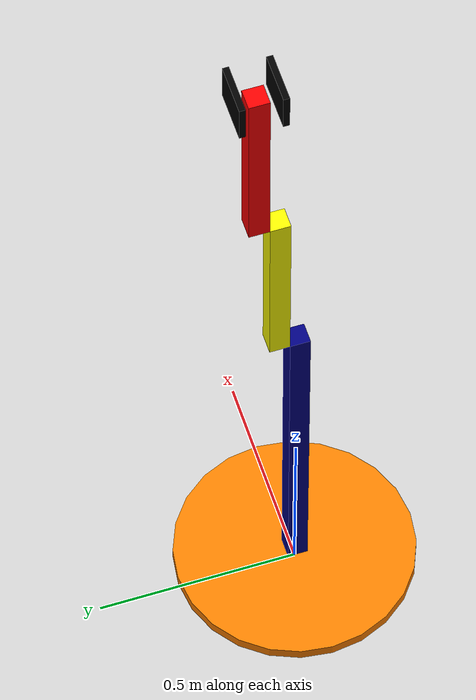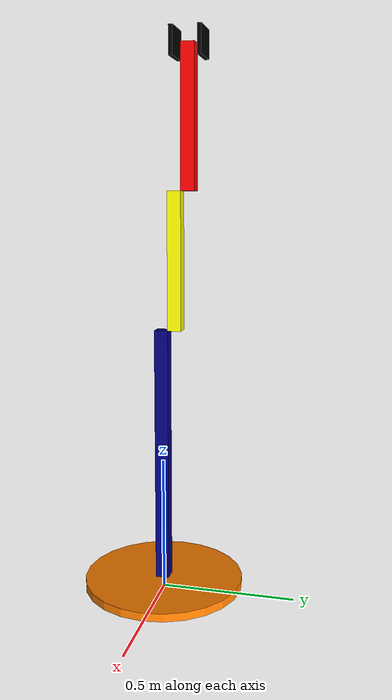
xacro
<?xml version="1.0"?>
<robot name="robotic_arm" xmlns:xacro="http://www.ros.org/wiki/xacro" >

    <xacro:include filename="colors.xacro" />
    <xacro:include filename="properties.xacro" />
    <xacro:include filename="gripper.xacro" />
    <xacro:include filename="gazebo.xacro" />
    <xacro:include filename="my_robotic_arm.xacro" />

</robot>

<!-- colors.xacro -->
<robot name="robotic_arm" xmlns:xacro="http://www.ros.org/wiki/xacro" >

    <material name="orange">
        <color rgba="1 0.5 0 1"/>
    </material>

    <material name="navy_blue">
        <color rgba="0 0 0.5 1"/>
    </material>

    <material name="yellow">
        <color rgba="1 1 0 1"/>
    </material>

    <material name="red">
        <color rgba="1 0 0 1"/>
    </material>

    <material name="black">
        <color rgba="0 0 0 1"/>
    </material>

</robot>

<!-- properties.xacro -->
<robot name="robotic_arm" xmlns:xacro="http://www.ros.org/wiki/xacro" >

    <xacro:macro name = "box_inertial" params = "m l w h xyz rpy">
        <inertial>
            <origin xyz = "${xyz}" rpy = "${rpy}"/>
            <mass value = "${m}"/>
            <inertia ixx="${(m/12) * (h*h + l*l)}" ixy="0.0" ixz="0.0" iyy="${(m/12) * (w*w + l*l)}" iyz="0.0" izz="${(m/12) * (w*w + h*h)}"/>
        </inertial>
    </xacro:macro>

    <xacro:macro name = "cylinder_inertial" params = "m r l xyz rpy">
        <inertial>
            <origin xyz = "${xyz}" rpy = "${rpy}"/>
            <mass value = "${m}"/>
            <inertia ixx="${(m/12) * (3*r*r + l*l)}" ixy="0.0" ixz="0.0" iyy="${(m/12) * (3*r*r + l*l)}" iyz="0.0" izz="${(m/12) * r * r}"/>
        </inertial>
    </xacro:macro>

    <xacro:macro name="default_inertial" params="z_value i_value mass">
        <inertial>
            <origin xyz="0 0 ${z_value}" rpy="0 0 0"/>
            <mass value="${mass}" />
            <inertia ixx="${i_value}" ixy="0.0" ixz="0.0"
               iyy="${i_value}" iyz="0.0"
               izz="${i_value}" />
        </inertial>
    </xacro:macro>

</robot>

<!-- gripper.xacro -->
<robot name="robotic_arm" xmlns:xacro="http://www.ros.org/wiki/xacro" >

    <xacro:property name="base_width" value="0.05" />
    <xacro:property name="base_length" value="0.05" />
    <xacro:property name="base_heigth" value="1.0" />
    <xacro:property name="axle_offset" value="0.5" />

    <link name="left_gripper_link">
        <visual>
            <origin xyz="0 0 0" rpy="0 0 0"/>
            <geometry>
                <box size="0.1 0.015 0.12" />
            </geometry>
            <material name = "black" />
        </visual>
        <collision>
            <origin xyz = "0 0 0" rpy = "0 0 0" />
            <geometry>
                <box size="0.1 0.015 0.12" />
            </geometry>
        </collision>
        <xacro:default_inertial z_value="0" i_value="1e-6" mass="1"/>

    </link>

    <joint name="left_to_top_joint" type="revolute">
        <parent link="top_link"/>
        <child link="left_gripper_link"/>
        <origin xyz="0 -${base_width} ${base_heigth - axle_offset}" rpy="0 -1.57 0"/>
        <axis xyz="0 0 -1"/>
        <limit effort="30.0" lower="-0.548" upper="0.0" velocity="0.1"/>
    </joint>

    <link name="right_gripper_link">
        <visual>
            <origin xyz="0 0 0" rpy="0 0 0"/>
            <geometry>
                <box size="0.1 0.015 0.12" />
            </geometry>
            <material name = "black" />

        </visual>
        <collision>
            <origin xyz = "0 0 0" rpy = "0 0 0" />
            <geometry>
                <box size="0.1 0.015 0.12" />
            </geometry>
        </collision>
        <xacro:default_inertial z_value="0" i_value="1e-6" mass="1"/>
    </link>

    <joint name="right_to_top_joint" type="revolute">
        <parent link="top_link"/>
        <child link="right_gripper_link"/>
        <origin xyz="0 ${base_width} ${base_heigth - axle_offset}" rpy="0 -1.57 0"/>
        <axis xyz="0 0 -1"/>
        <limit effort="30.0" lower="-0.548" upper="0.0" velocity="0.1"/>
    </joint>

</robot>

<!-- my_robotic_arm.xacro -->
<robot name="robotic_arm" xmlns:xacro="http://www.ros.org/wiki/xacro" >

    <xacro:property name="base_width" value="0.05" />
    <xacro:property name="base_length" value="0.05" />
    <xacro:property name="base_heigth" value="1.0" />

    <xacro:property name="cylinder_radius" value="0.3" />
    <xacro:property name="cylinder_length" value="0.03" />

    <xacro:property name="axle_offset" value="0.5" /> <!-- Space between joint and end of beam -->

    <link name = "base_footprint"/>

    <link name="base_link">
        <visual>
            <origin xyz="0 0 0" rpy="0 0 0"/>
            <geometry>
                <box size = "${base_width} ${base_length} ${base_heigth}" />
            </geometry>
            <material name = "navy_blue" />
        </visual>
        <collision>
            <origin xyz = "0 0 0" rpy = "0 0 0" />
            <geometry>
                <box size = "${base_width} ${base_length} ${base_heigth}" />
            </geometry>
        </collision>
        <xacro:box_inertial m = "5.0" l = "${2*base_length}"
                                      w = "${2*base_width}"
                                      h = "${2*base_heigth}"
                                      xyz = "0 0 0"
                                      rpy = "0 0 0" />
    </link>

    <joint name="base_footprint_to_base_joint" type="fixed">
        <parent link="base_footprint"/>
        <child link="base_link"/>
        <origin xyz="0 0 ${base_heigth/2}" />
    </joint>

    <link name="platform">
        <visual>
            <origin xyz="0 0 0" rpy="0 0 0"/>
            <geometry>
                <cylinder radius = "${cylinder_radius}" length = "${cylinder_length}" />
            </geometry>
            <material name = "orange" />
        </visual>
        <collision>
             <origin xyz="0 0 0" rpy="0 0 0"/>
            <geometry>
                <cylinder radius = "${cylinder_radius}" length = "${cylinder_length}"/>
            </geometry>
        </collision>
        <xacro:cylinder_inertial m = "5.0" l = "${cylinder_length}"
                                      r = "${cylinder_radius}"
                                      xyz = "0 0 0"
                                      rpy = "0 0 0" />
    </link>

    <joint name="platform_to_base_joint" type="fixed">
        <parent link="base_footprint"/>
        <child link="platform"/>
        <origin xyz="0 0 ${cylinder_length}" />
    </joint>

    <link name="mid_link">
        <visual>
            <origin xyz="0 0 ${base_heigth/4}" rpy= "0 0 0"/>
            <geometry>
                <box size = "${base_width} ${base_length} ${base_heigth/2}" />
            </geometry>
            <material name = "yellow" />
        </visual>
        <collision>
            <origin xyz = "0 0 ${base_heigth/4}" rpy = "0 0 0" />
            <geometry>
                <box size = "${base_width} ${base_length} ${base_heigth/2}" />
            </geometry>
        </collision>
        <xacro:box_inertial m = "2.0" l = "${base_length}"
                                      w = "${base_width}"
                                      h = "${base_heigth/2}"
                                      xyz = "0 0 0"
                                      rpy = "0 0 ${base_heigth/4}" />
    </link>

    <joint name="base_to_mid_joint" type="revolute">
        <parent link="base_link"/>
        <child link="mid_link"/>
        <origin xyz="0 ${base_width} ${base_heigth - axle_offset}" rpy="0 0 0"/>
        <axis xyz="0 1 0"/>
        <limit effort="100.0" velocity="0.5" lower="-3.14" upper="3.14" />
  </joint>

    <link name="top_link">
        <visual>
            <origin xyz="0 0 ${base_heigth/4}" rpy= "0 0 0"/>
            <geometry>
                <box size = "${base_width} ${base_length} ${base_heigth/2}" />
            </geometry>
            <material name = "red" />
        </visual>
        <collision>
            <origin xyz = "0 0 ${base_heigth/4}" rpy = "0 0 0" />
            <geometry>
                <box size = "${base_width} ${base_length} ${base_heigth/2}" />
            </geometry>
        </collision>
        <xacro:box_inertial m = "2.0" l = "${base_length}"
                                      w = "${base_width}"
                                      h = "${base_heigth/2}"
                                      xyz = "0 0 0"
                                      rpy = "0 0 ${base_heigth/4}" />
    </link>

    <joint name="mid_to_top_joint" type="revolute">
        <parent link="mid_link"/>
        <child link="top_link"/>
        <origin xyz="0 ${base_width} ${base_heigth - axle_offset}" rpy="0 0 0"/>
        <axis xyz="0 1 0"/>
        <limit effort="100.0" velocity="0.5" lower="-3.14" upper="3.14" />
  </joint>

</robot>
